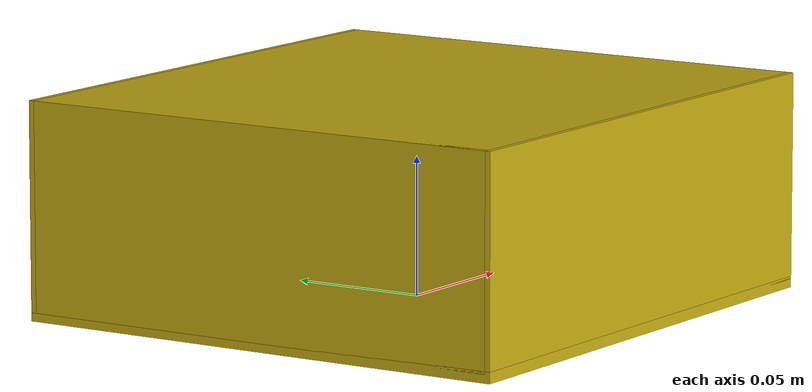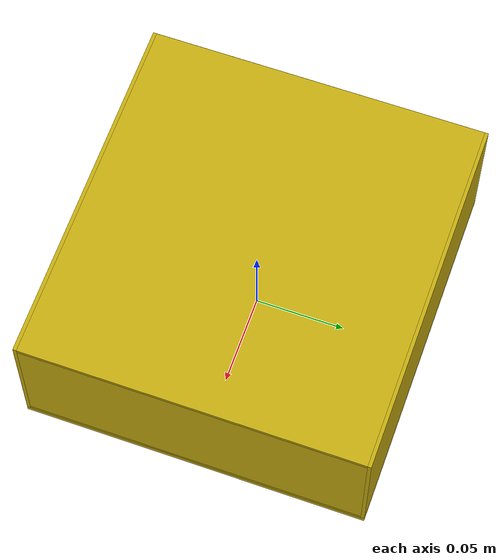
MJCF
<?xml version="1.0" encoding="utf-8"?>
<mujoco model="cabinet">
    <asset>
        <material name="drawer-yellow" rgba="0.78 0.68 0.06 1" reflectance="0.08" shininess="0.15" specular="0.15"/>
    </asset>
  <worldbody>
      <body>
          <body name="object" pos="0.0 0 0">
              <body name="base" pos="0 0 0" quat="1 0 0 0">
                  <inertial pos="0 0 -0.001" quat="0.5 0.5 0.5 0.5" mass="2.0" diaginertia="0.5 0.5 0.5" />
                  <geom material="drawer-yellow" pos="0.0 0 -0.001" size="0.1 0.095 0.002" group="1" type="box" mass=".05"/>

                  <geom material="drawer-yellow" pos="-0.099 0 0.0375" size="0.001 0.093 0.0375" group="1" type="box" mass=".05"/>
                  <geom material="drawer-yellow" pos="0 0.094 0.0375" size="0.1 0.001 0.0375" group="1" type="box" mass=".05"/>
                  <geom material="drawer-yellow" pos="0 -0.094 0.0375" size="0.1 0.001 0.0375" group="1" type="box" mass=".05"/>
                  <geom material="drawer-yellow" pos="0 0 0.074" size="0.1 0.093 0.001" group="1" type="box" mass=".05"/>
                  <geom material="drawer-yellow" pos="0 0 0.001" size="0.1 0.093 0.001" group="1" type="box" mass=".05"/>

                  <body name="drawer_link" pos="0 0 0">
                          <inertial pos="0 0 0.0375" quat="0.5 0.5 0.5 0.5" mass="0.2" diaginertia="0.5 0.5 0.5" />

                      <joint type="slide" range="0 0.14" axis="1 0 0"
                      name="goal_slidey" pos="0 0 0" damping="0.1"/>

                      <geom material="drawer-yellow" pos="0.099 0 0.0375" size="0.001 0.093 0.0355" group="1" type="box" mass=".1"/>
                      <geom material="drawer-yellow" pos="0.0 0.092 0.032" size="0.098 0.001 0.03" group="1" type="box" mass=".04"/>
                      <geom material="drawer-yellow" pos="0.0 -0.092 0.032" size="0.098 0.001 0.03" group="1" type="box" mass=".04"/>
                      <geom material="drawer-yellow" pos="0.0 0 0.003" size="0.098 0.091 0.001" group="1" type="box" mass=".04"/>
                  </body>
              </body>
          </body>
          <site name="bottom_site" pos="0 0 -0.002" rgba="0 0 0 0" size="0.005"/>
          <site name="top_site" pos="0 0 0.075" rgba="0 0 0 0" size="0.005"/>
          <site name="horizontal_radius_site" pos="0.3 0 0" rgba="0 0 0 0" size="0.1"/>
      </body>
    </worldbody>
</mujoco>
